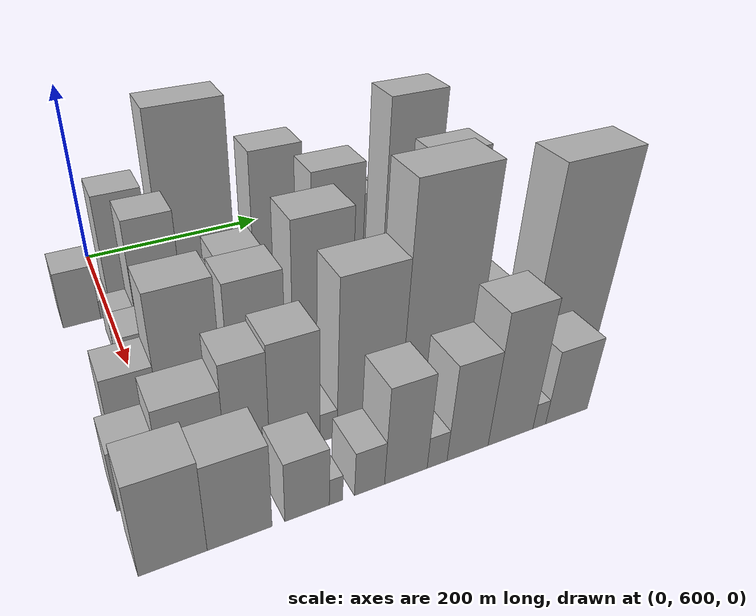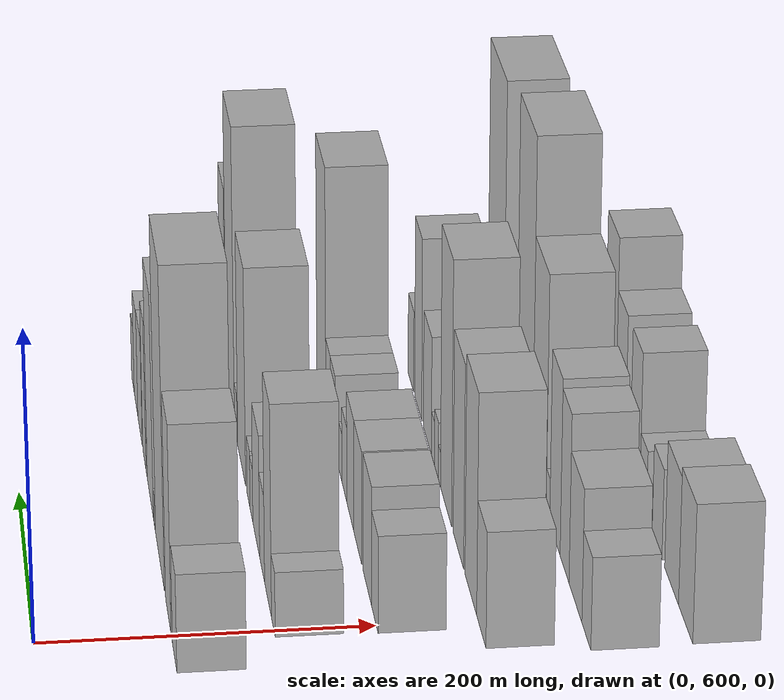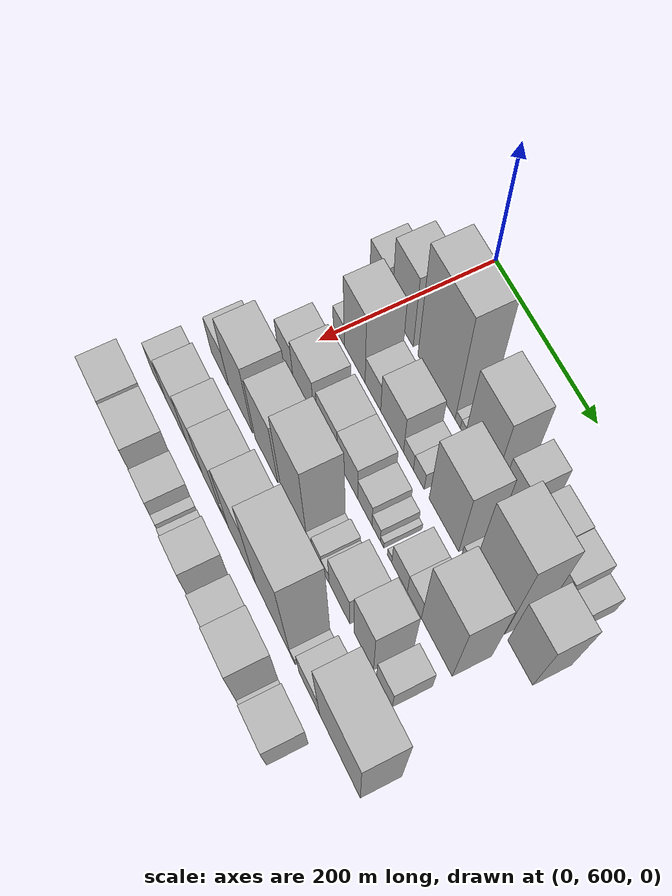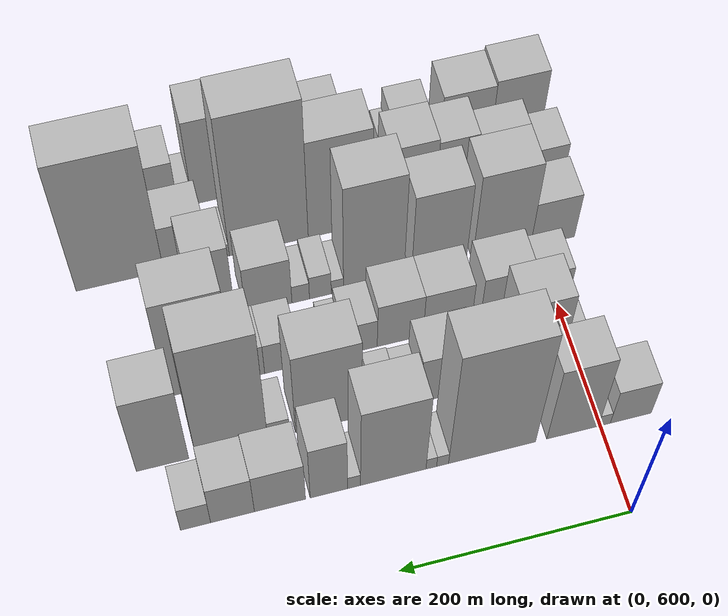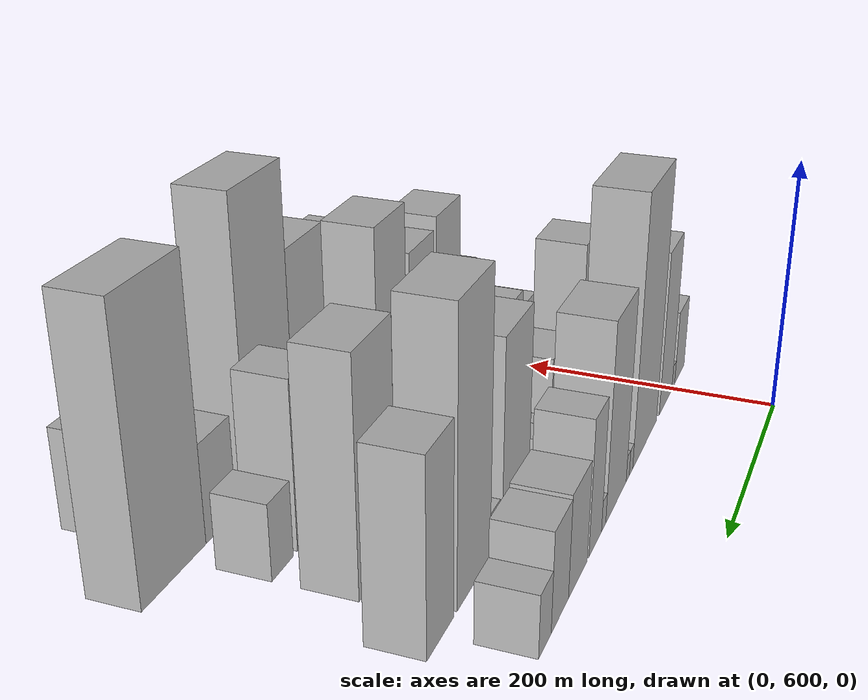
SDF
<sdf version="1.6">
 <world name="default">
  <model name="building_40">
   <static>1</static>
   <pose>100.0000 572.9199 0 0.000000 0.000000 0.000000</pose>
   <link name="link">
    <pose>0 0 31.50 0 0 0</pose>
    <collision name="collision"><geometry><box><size>40.0000 36.7376 63.0000</size></box></geometry></collision>
    <visual name="visual">
     <cast_shadows>0</cast_shadows>
     <geometry><box><size>40.0000 36.7376 63.0000</size></box></geometry>
     <material>
      <script>
       <uri>model://HANNAS_wall/materials/scripts</uri>
       <uri>model://HANNAS_wall/materials/textures</uri>
       <name>vrc/HANNAS_wall</name>
      </script>
     </material>
    </visual>
   </link>
  </model>
  <model name="building_41">
   <static>1</static>
   <pose>100.0000 596.5250 0 0.000000 0.000000 0.000000</pose>
   <link name="link">
    <pose>0 0 10.50 0 0 0</pose>
    <collision name="collision"><geometry><box><size>40.0000 10.4726 21.0000</size></box></geometry></collision>
    <visual name="visual">
     <cast_shadows>0</cast_shadows>
     <geometry><box><size>40.0000 10.4726 21.0000</size></box></geometry>
     <material>
      <script>
       <uri>model://HANNAS_wall/materials/scripts</uri>
       <uri>model://HANNAS_wall/materials/textures</uri>
       <name>vrc/HANNAS_wall</name>
      </script>
     </material>
    </visual>
   </link>
  </model>
  <model name="building_42">
   <static>1</static>
   <pose>100.0000 624.8294 0 0.000000 0.000000 0.000000</pose>
   <link name="link">
    <pose>0 0 67.50 0 0 0</pose>
    <collision name="collision"><geometry><box><size>40.0000 46.1362 135.0000</size></box></geometry></collision>
    <visual name="visual">
     <cast_shadows>0</cast_shadows>
     <geometry><box><size>40.0000 46.1362 135.0000</size></box></geometry>
     <material>
      <script>
       <uri>model://HANNAS_wall/materials/scripts</uri>
       <uri>model://HANNAS_wall/materials/textures</uri>
       <name>vrc/HANNAS_wall</name>
      </script>
     </material>
    </visual>
   </link>
  </model>
  <model name="building_43">
   <static>1</static>
   <pose>100.0000 696.2283 0 0.000000 0.000000 0.000000</pose>
   <link name="link">
    <pose>0 0 105.00 0 0 0</pose>
    <collision name="collision"><geometry><box><size>40.0000 76.6616 210.0000</size></box></geometry></collision>
    <visual name="visual">
     <cast_shadows>0</cast_shadows>
     <geometry><box><size>40.0000 76.6616 210.0000</size></box></geometry>
     <material>
      <script>
       <uri>model://HANNAS_wall/materials/scripts</uri>
       <uri>model://HANNAS_wall/materials/textures</uri>
       <name>vrc/HANNAS_wall</name>
      </script>
     </material>
    </visual>
   </link>
  </model>
  <model name="building_44">
   <static>1</static>
   <pose>100.0000 739.7841 0 0.000000 0.000000 0.000000</pose>
   <link name="link">
    <pose>0 0 10.50 0 0 0</pose>
    <collision name="collision"><geometry><box><size>40.0000 10.4501 21.0000</size></box></geometry></collision>
    <visual name="visual">
     <cast_shadows>0</cast_shadows>
     <geometry><box><size>40.0000 10.4501 21.0000</size></box></geometry>
     <material>
      <script>
       <uri>model://HANNAS_wall/materials/scripts</uri>
       <uri>model://HANNAS_wall/materials/textures</uri>
       <name>vrc/HANNAS_wall</name>
      </script>
     </material>
    </visual>
   </link>
  </model>
  <model name="building_45">
   <static>1</static>
   <pose>100.0000 749.6414 0 0.000000 0.000000 0.000000</pose>
   <link name="link">
    <pose>0 0 10.50 0 0 0</pose>
    <collision name="collision"><geometry><box><size>40.0000 9.2644 21.0000</size></box></geometry></collision>
    <visual name="visual">
     <cast_shadows>0</cast_shadows>
     <geometry><box><size>40.0000 9.2644 21.0000</size></box></geometry>
     <material>
      <script>
       <uri>model://HANNAS_wall/materials/scripts</uri>
       <uri>model://HANNAS_wall/materials/textures</uri>
       <name>vrc/HANNAS_wall</name>
      </script>
     </material>
    </visual>
   </link>
  </model>
  <model name="building_46">
   <static>1</static>
   <pose>100.0000 782.7369 0 0.000000 0.000000 0.000000</pose>
   <link name="link">
    <pose>0 0 75.00 0 0 0</pose>
    <collision name="collision"><geometry><box><size>40.0000 56.9267 150.0000</size></box></geometry></collision>
    <visual name="visual">
     <cast_shadows>0</cast_shadows>
     <geometry><box><size>40.0000 56.9267 150.0000</size></box></geometry>
     <material>
      <script>
       <uri>model://HANNAS_wall/materials/scripts</uri>
       <uri>model://HANNAS_wall/materials/textures</uri>
       <name>vrc/HANNAS_wall</name>
      </script>
     </material>
    </visual>
   </link>
  </model>
  <model name="building_47">
   <static>1</static>
   <pose>100.0000 816.8088 0 0.000000 0.000000 0.000000</pose>
   <link name="link">
    <pose>0 0 12.00 0 0 0</pose>
    <collision name="collision"><geometry><box><size>40.0000 11.2171 24.0000</size></box></geometry></collision>
    <visual name="visual">
     <cast_shadows>0</cast_shadows>
     <geometry><box><size>40.0000 11.2171 24.0000</size></box></geometry>
     <material>
      <script>
       <uri>model://HANNAS_wall/materials/scripts</uri>
       <uri>model://HANNAS_wall/materials/textures</uri>
       <name>vrc/HANNAS_wall</name>
      </script>
     </material>
    </visual>
   </link>
  </model>
  <model name="building_48">
   <static>1</static>
   <pose>100.0000 838.4634 0 0.000000 0.000000 0.000000</pose>
   <link name="link">
    <pose>0 0 51.00 0 0 0</pose>
    <collision name="collision"><geometry><box><size>40.0000 32.0920 102.0000</size></box></geometry></collision>
    <visual name="visual">
     <cast_shadows>0</cast_shadows>
     <geometry><box><size>40.0000 32.0920 102.0000</size></box></geometry>
     <material>
      <script>
       <uri>model://HANNAS_wall/materials/scripts</uri>
       <uri>model://HANNAS_wall/materials/textures</uri>
       <name>vrc/HANNAS_wall</name>
      </script>
     </material>
    </visual>
   </link>
  </model>
  <model name="building_49">
   <static>1</static>
   <pose>100.0000 880.3595 0 0.000000 0.000000 0.000000</pose>
   <link name="link">
    <pose>0 0 37.50 0 0 0</pose>
    <collision name="collision"><geometry><box><size>40.0000 43.7001 75.0000</size></box></geometry></collision>
    <visual name="visual">
     <cast_shadows>0</cast_shadows>
     <geometry><box><size>40.0000 43.7001 75.0000</size></box></geometry>
     <material>
      <script>
       <uri>model://HANNAS_wall/materials/scripts</uri>
       <uri>model://HANNAS_wall/materials/textures</uri>
       <name>vrc/HANNAS_wall</name>
      </script>
     </material>
    </visual>
   </link>
  </model>
  <model name="building_50">
   <static>1</static>
   <pose>100.0000 920.8104 0 0.000000 0.000000 0.000000</pose>
   <link name="link">
    <pose>0 0 36.00 0 0 0</pose>
    <collision name="collision"><geometry><box><size>40.0000 37.2017 72.0000</size></box></geometry></collision>
    <visual name="visual">
     <cast_shadows>0</cast_shadows>
     <geometry><box><size>40.0000 37.2017 72.0000</size></box></geometry>
     <material>
      <script>
       <uri>model://HANNAS_wall/materials/scripts</uri>
       <uri>model://HANNAS_wall/materials/textures</uri>
       <name>vrc/HANNAS_wall</name>
      </script>
     </material>
    </visual>
   </link>
  </model>
  <model name="building_51">
   <static>1</static>
   <pose>100.0000 952.1875 0 0.000000 0.000000 0.000000</pose>
   <link name="link">
    <pose>0 0 22.50 0 0 0</pose>
    <collision name="collision"><geometry><box><size>40.0000 25.5526 45.0000</size></box></geometry></collision>
    <visual name="visual">
     <cast_shadows>0</cast_shadows>
     <geometry><box><size>40.0000 25.5526 45.0000</size></box></geometry>
     <material>
      <script>
       <uri>model://HANNAS_wall/materials/scripts</uri>
       <uri>model://HANNAS_wall/materials/textures</uri>
       <name>vrc/HANNAS_wall</name>
      </script>
     </material>
    </visual>
   </link>
  </model>
  <model name="building_97">
   <static>1</static>
   <pose>160.0000 604.2125 0 0.000000 0.000000 0.000000</pose>
   <link name="link">
    <pose>0 0 21.00 0 0 0</pose>
    <collision name="collision"><geometry><box><size>40.0000 24.4616 42.0000</size></box></geometry></collision>
    <visual name="visual">
     <cast_shadows>0</cast_shadows>
     <geometry><box><size>40.0000 24.4616 42.0000</size></box></geometry>
     <material>
      <script>
       <uri>model://HANNAS_wall/materials/scripts</uri>
       <uri>model://HANNAS_wall/materials/textures</uri>
       <name>vrc/HANNAS_wall</name>
      </script>
     </material>
    </visual>
   </link>
  </model>
  <model name="building_98">
   <static>1</static>
   <pose>160.0000 639.0380 0 0.000000 0.000000 0.000000</pose>
   <link name="link">
    <pose>0 0 69.00 0 0 0</pose>
    <collision name="collision"><geometry><box><size>40.0000 45.1893 138.0000</size></box></geometry></collision>
    <visual name="visual">
     <cast_shadows>0</cast_shadows>
     <geometry><box><size>40.0000 45.1893 138.0000</size></box></geometry>
     <material>
      <script>
       <uri>model://HANNAS_wall/materials/scripts</uri>
       <uri>model://HANNAS_wall/materials/textures</uri>
       <name>vrc/HANNAS_wall</name>
      </script>
     </material>
    </visual>
   </link>
  </model>
  <model name="building_99">
   <static>1</static>
   <pose>160.0000 678.2234 0 0.000000 0.000000 0.000000</pose>
   <link name="link">
    <pose>0 0 28.50 0 0 0</pose>
    <collision name="collision"><geometry><box><size>40.0000 33.1814 57.0000</size></box></geometry></collision>
    <visual name="visual">
     <cast_shadows>0</cast_shadows>
     <geometry><box><size>40.0000 33.1814 57.0000</size></box></geometry>
     <material>
      <script>
       <uri>model://HANNAS_wall/materials/scripts</uri>
       <uri>model://HANNAS_wall/materials/textures</uri>
       <name>vrc/HANNAS_wall</name>
      </script>
     </material>
    </visual>
   </link>
  </model>
  <model name="building_100">
   <static>1</static>
   <pose>160.0000 718.5793 0 0.000000 0.000000 0.000000</pose>
   <link name="link">
    <pose>0 0 40.50 0 0 0</pose>
    <collision name="collision"><geometry><box><size>40.0000 47.5305 81.0000</size></box></geometry></collision>
    <visual name="visual">
     <cast_shadows>0</cast_shadows>
     <geometry><box><size>40.0000 47.5305 81.0000</size></box></geometry>
     <material>
      <script>
       <uri>model://HANNAS_wall/materials/scripts</uri>
       <uri>model://HANNAS_wall/materials/textures</uri>
       <name>vrc/HANNAS_wall</name>
      </script>
     </material>
    </visual>
   </link>
  </model>
  <model name="building_101">
   <static>1</static>
   <pose>160.0000 752.3772 0 0.000000 0.000000 0.000000</pose>
   <link name="link">
    <pose>0 0 18.00 0 0 0</pose>
    <collision name="collision"><geometry><box><size>40.0000 20.0651 36.0000</size></box></geometry></collision>
    <visual name="visual">
     <cast_shadows>0</cast_shadows>
     <geometry><box><size>40.0000 20.0651 36.0000</size></box></geometry>
     <material>
      <script>
       <uri>model://HANNAS_wall/materials/scripts</uri>
       <uri>model://HANNAS_wall/materials/textures</uri>
       <name>vrc/HANNAS_wall</name>
      </script>
     </material>
    </visual>
   </link>
  </model>
  <model name="building_102">
   <static>1</static>
   <pose>160.0000 773.3027 0 0.000000 0.000000 0.000000</pose>
   <link name="link">
    <pose>0 0 19.50 0 0 0</pose>
    <collision name="collision"><geometry><box><size>40.0000 21.7859 39.0000</size></box></geometry></collision>
    <visual name="visual">
     <cast_shadows>0</cast_shadows>
     <geometry><box><size>40.0000 21.7859 39.0000</size></box></geometry>
     <material>
      <script>
       <uri>model://HANNAS_wall/materials/scripts</uri>
       <uri>model://HANNAS_wall/materials/textures</uri>
       <name>vrc/HANNAS_wall</name>
      </script>
     </material>
    </visual>
   </link>
  </model>
  <model name="building_103">
   <static>1</static>
   <pose>160.0000 823.2101 0 0.000000 0.000000 0.000000</pose>
   <link name="link">
    <pose>0 0 73.50 0 0 0</pose>
    <collision name="collision"><geometry><box><size>40.0000 58.0291 147.0000</size></box></geometry></collision>
    <visual name="visual">
     <cast_shadows>0</cast_shadows>
     <geometry><box><size>40.0000 58.0291 147.0000</size></box></geometry>
     <material>
      <script>
       <uri>model://HANNAS_wall/materials/scripts</uri>
       <uri>model://HANNAS_wall/materials/textures</uri>
       <name>vrc/HANNAS_wall</name>
      </script>
     </material>
    </visual>
   </link>
  </model>
  <model name="building_104">
   <static>1</static>
   <pose>160.0000 866.8562 0 0.000000 0.000000 0.000000</pose>
   <link name="link">
    <pose>0 0 16.50 0 0 0</pose>
    <collision name="collision"><geometry><box><size>40.0000 19.2632 33.0000</size></box></geometry></collision>
    <visual name="visual">
     <cast_shadows>0</cast_shadows>
     <geometry><box><size>40.0000 19.2632 33.0000</size></box></geometry>
     <material>
      <script>
       <uri>model://HANNAS_wall/materials/scripts</uri>
       <uri>model://HANNAS_wall/materials/textures</uri>
       <name>vrc/HANNAS_wall</name>
      </script>
     </material>
    </visual>
   </link>
  </model>
  <model name="building_105">
   <static>1</static>
   <pose>160.0000 907.6224 0 0.000000 0.000000 0.000000</pose>
   <link name="link">
    <pose>0 0 103.50 0 0 0</pose>
    <collision name="collision"><geometry><box><size>40.0000 62.2692 207.0000</size></box></geometry></collision>
    <visual name="visual">
     <cast_shadows>0</cast_shadows>
     <geometry><box><size>40.0000 62.2692 207.0000</size></box></geometry>
     <material>
      <script>
       <uri>model://HANNAS_wall/materials/scripts</uri>
       <uri>model://HANNAS_wall/materials/textures</uri>
       <name>vrc/HANNAS_wall</name>
      </script>
     </material>
    </visual>
   </link>
  </model>
  <model name="building_106">
   <static>1</static>
   <pose>160.0000 967.2731 0 0.000000 0.000000 0.000000</pose>
   <link name="link">
    <pose>0 0 69.00 0 0 0</pose>
    <collision name="collision"><geometry><box><size>40.0000 45.0322 138.0000</size></box></geometry></collision>
    <visual name="visual">
     <cast_shadows>0</cast_shadows>
     <geometry><box><size>40.0000 45.0322 138.0000</size></box></geometry>
     <material>
      <script>
       <uri>model://HANNAS_wall/materials/scripts</uri>
       <uri>model://HANNAS_wall/materials/textures</uri>
       <name>vrc/HANNAS_wall</name>
      </script>
     </material>
    </visual>
   </link>
  </model>
  <model name="building_153">
   <static>1</static>
   <pose>220.0000 607.2901 0 0.000000 0.000000 0.000000</pose>
   <link name="link">
    <pose>0 0 31.50 0 0 0</pose>
    <collision name="collision"><geometry><box><size>40.0000 34.1573 63.0000</size></box></geometry></collision>
    <visual name="visual">
     <cast_shadows>0</cast_shadows>
     <geometry><box><size>40.0000 34.1573 63.0000</size></box></geometry>
     <material>
      <script>
       <uri>model://HANNAS_wall/materials/scripts</uri>
       <uri>model://HANNAS_wall/materials/textures</uri>
       <name>vrc/HANNAS_wall</name>
      </script>
     </material>
    </visual>
   </link>
  </model>
  <model name="building_154">
   <static>1</static>
   <pose>220.0000 647.7543 0 0.000000 0.000000 0.000000</pose>
   <link name="link">
    <pose>0 0 39.00 0 0 0</pose>
    <collision name="collision"><geometry><box><size>40.0000 46.7710 78.0000</size></box></geometry></collision>
    <visual name="visual">
     <cast_shadows>0</cast_shadows>
     <geometry><box><size>40.0000 46.7710 78.0000</size></box></geometry>
     <material>
      <script>
       <uri>model://HANNAS_wall/materials/scripts</uri>
       <uri>model://HANNAS_wall/materials/textures</uri>
       <name>vrc/HANNAS_wall</name>
      </script>
     </material>
    </visual>
   </link>
  </model>
  <model name="building_155">
   <static>1</static>
   <pose>220.0000 700.9331 0 0.000000 0.000000 0.000000</pose>
   <link name="link">
    <pose>0 0 37.50 0 0 0</pose>
    <collision name="collision"><geometry><box><size>40.0000 43.5866 75.0000</size></box></geometry></collision>
    <visual name="visual">
     <cast_shadows>0</cast_shadows>
     <geometry><box><size>40.0000 43.5866 75.0000</size></box></geometry>
     <material>
      <script>
       <uri>model://HANNAS_wall/materials/scripts</uri>
       <uri>model://HANNAS_wall/materials/textures</uri>
       <name>vrc/HANNAS_wall</name>
      </script>
     </material>
    </visual>
   </link>
  </model>
  <model name="building_156">
   <static>1</static>
   <pose>220.0000 743.4895 0 0.000000 0.000000 0.000000</pose>
   <link name="link">
    <pose>0 0 37.50 0 0 0</pose>
    <collision name="collision"><geometry><box><size>40.0000 41.5262 75.0000</size></box></geometry></collision>
    <visual name="visual">
     <cast_shadows>0</cast_shadows>
     <geometry><box><size>40.0000 41.5262 75.0000</size></box></geometry>
     <material>
      <script>
       <uri>model://HANNAS_wall/materials/scripts</uri>
       <uri>model://HANNAS_wall/materials/textures</uri>
       <name>vrc/HANNAS_wall</name>
      </script>
     </material>
    </visual>
   </link>
  </model>
  <model name="building_157">
   <static>1</static>
   <pose>220.0000 779.0236 0 0.000000 0.000000 0.000000</pose>
   <link name="link">
    <pose>0 0 25.50 0 0 0</pose>
    <collision name="collision"><geometry><box><size>40.0000 29.5420 51.0000</size></box></geometry></collision>
    <visual name="visual">
     <cast_shadows>0</cast_shadows>
     <geometry><box><size>40.0000 29.5420 51.0000</size></box></geometry>
     <material>
      <script>
       <uri>model://HANNAS_wall/materials/scripts</uri>
       <uri>model://HANNAS_wall/materials/textures</uri>
       <name>vrc/HANNAS_wall</name>
      </script>
     </material>
    </visual>
   </link>
  </model>
  <model name="building_158">
   <static>1</static>
   <pose>220.0000 802.3124 0 0.000000 0.000000 0.000000</pose>
   <link name="link">
    <pose>0 0 16.50 0 0 0</pose>
    <collision name="collision"><geometry><box><size>40.0000 17.0357 33.0000</size></box></geometry></collision>
    <visual name="visual">
     <cast_shadows>0</cast_shadows>
     <geometry><box><size>40.0000 17.0357 33.0000</size></box></geometry>
     <material>
      <script>
       <uri>model://HANNAS_wall/materials/scripts</uri>
       <uri>model://HANNAS_wall/materials/textures</uri>
       <name>vrc/HANNAS_wall</name>
      </script>
     </material>
    </visual>
   </link>
  </model>
  <model name="building_159">
   <static>1</static>
   <pose>220.0000 814.4273 0 0.000000 0.000000 0.000000</pose>
   <link name="link">
    <pose>0 0 7.50 0 0 0</pose>
    <collision name="collision"><geometry><box><size>40.0000 7.1941 15.0000</size></box></geometry></collision>
    <visual name="visual">
     <cast_shadows>0</cast_shadows>
     <geometry><box><size>40.0000 7.1941 15.0000</size></box></geometry>
     <material>
      <script>
       <uri>model://HANNAS_wall/materials/scripts</uri>
       <uri>model://HANNAS_wall/materials/textures</uri>
       <name>vrc/HANNAS_wall</name>
      </script>
     </material>
    </visual>
   </link>
  </model>
  <model name="building_160">
   <static>1</static>
   <pose>220.0000 829.4575 0 0.000000 0.000000 0.000000</pose>
   <link name="link">
    <pose>0 0 9.00 0 0 0</pose>
    <collision name="collision"><geometry><box><size>40.0000 8.8664 18.0000</size></box></geometry></collision>
    <visual name="visual">
     <cast_shadows>0</cast_shadows>
     <geometry><box><size>40.0000 8.8664 18.0000</size></box></geometry>
     <material>
      <script>
       <uri>model://HANNAS_wall/materials/scripts</uri>
       <uri>model://HANNAS_wall/materials/textures</uri>
       <name>vrc/HANNAS_wall</name>
      </script>
     </material>
    </visual>
   </link>
  </model>
  <model name="building_161">
   <static>1</static>
   <pose>220.0000 849.2988 0 0.000000 0.000000 0.000000</pose>
   <link name="link">
    <pose>0 0 27.00 0 0 0</pose>
    <collision name="collision"><geometry><box><size>40.0000 30.8163 54.0000</size></box></geometry></collision>
    <visual name="visual">
     <cast_shadows>0</cast_shadows>
     <geometry><box><size>40.0000 30.8163 54.0000</size></box></geometry>
     <material>
      <script>
       <uri>model://HANNAS_wall/materials/scripts</uri>
       <uri>model://HANNAS_wall/materials/textures</uri>
       <name>vrc/HANNAS_wall</name>
      </script>
     </material>
    </visual>
   </link>
  </model>
  <model name="building_162">
   <static>1</static>
   <pose>220.0000 878.3520 0 0.000000 0.000000 0.000000</pose>
   <link name="link">
    <pose>0 0 27.00 0 0 0</pose>
    <collision name="collision"><geometry><box><size>40.0000 27.2900 54.0000</size></box></geometry></collision>
    <visual name="visual">
     <cast_shadows>0</cast_shadows>
     <geometry><box><size>40.0000 27.2900 54.0000</size></box></geometry>
     <material>
      <script>
       <uri>model://HANNAS_wall/materials/scripts</uri>
       <uri>model://HANNAS_wall/materials/textures</uri>
       <name>vrc/HANNAS_wall</name>
      </script>
     </material>
    </visual>
   </link>
  </model>
  <model name="building_163">
   <static>1</static>
   <pose>220.0000 921.3708 0 0.000000 0.000000 0.000000</pose>
   <link name="link">
    <pose>0 0 85.50 0 0 0</pose>
    <collision name="collision"><geometry><box><size>40.0000 58.7475 171.0000</size></box></geometry></collision>
    <visual name="visual">
     <cast_shadows>0</cast_shadows>
     <geometry><box><size>40.0000 58.7475 171.0000</size></box></geometry>
     <material>
      <script>
       <uri>model://HANNAS_wall/materials/scripts</uri>
       <uri>model://HANNAS_wall/materials/textures</uri>
       <name>vrc/HANNAS_wall</name>
      </script>
     </material>
    </visual>
   </link>
  </model>
  <model name="building_205">
   <static>1</static>
   <pose>280.0000 585.2950 0 0.000000 0.000000 0.000000</pose>
   <link name="link">
    <pose>0 0 37.50 0 0 0</pose>
    <collision name="collision"><geometry><box><size>40.0000 41.3875 75.0000</size></box></geometry></collision>
    <visual name="visual">
     <cast_shadows>0</cast_shadows>
     <geometry><box><size>40.0000 41.3875 75.0000</size></box></geometry>
     <material>
      <script>
       <uri>model://HANNAS_wall/materials/scripts</uri>
       <uri>model://HANNAS_wall/materials/textures</uri>
       <name>vrc/HANNAS_wall</name>
      </script>
     </material>
    </visual>
   </link>
  </model>
  <model name="building_206">
   <static>1</static>
   <pose>280.0000 632.9759 0 0.000000 0.000000 0.000000</pose>
   <link name="link">
    <pose>0 0 72.00 0 0 0</pose>
    <collision name="collision"><geometry><box><size>40.0000 53.9742 144.0000</size></box></geometry></collision>
    <visual name="visual">
     <cast_shadows>0</cast_shadows>
     <geometry><box><size>40.0000 53.9742 144.0000</size></box></geometry>
     <material>
      <script>
       <uri>model://HANNAS_wall/materials/scripts</uri>
       <uri>model://HANNAS_wall/materials/textures</uri>
       <name>vrc/HANNAS_wall</name>
      </script>
     </material>
    </visual>
   </link>
  </model>
  <model name="building_207">
   <static>1</static>
   <pose>280.0000 691.1954 0 0.000000 0.000000 0.000000</pose>
   <link name="link">
    <pose>0 0 67.50 0 0 0</pose>
    <collision name="collision"><geometry><box><size>40.0000 50.4648 135.0000</size></box></geometry></collision>
    <visual name="visual">
     <cast_shadows>0</cast_shadows>
     <geometry><box><size>40.0000 50.4648 135.0000</size></box></geometry>
     <material>
      <script>
       <uri>model://HANNAS_wall/materials/scripts</uri>
       <uri>model://HANNAS_wall/materials/textures</uri>
       <name>vrc/HANNAS_wall</name>
      </script>
     </material>
    </visual>
   </link>
  </model>
  <model name="building_208">
   <static>1</static>
   <pose>280.0000 751.0943 0 0.000000 0.000000 0.000000</pose>
   <link name="link">
    <pose>0 0 88.50 0 0 0</pose>
    <collision name="collision"><geometry><box><size>40.0000 55.3329 177.0000</size></box></geometry></collision>
    <visual name="visual">
     <cast_shadows>0</cast_shadows>
     <geometry><box><size>40.0000 55.3329 177.0000</size></box></geometry>
     <material>
      <script>
       <uri>model://HANNAS_wall/materials/scripts</uri>
       <uri>model://HANNAS_wall/materials/textures</uri>
       <name>vrc/HANNAS_wall</name>
      </script>
     </material>
    </visual>
   </link>
  </model>
  <model name="building_209">
   <static>1</static>
   <pose>280.0000 784.3705 0 0.000000 0.000000 0.000000</pose>
   <link name="link">
    <pose>0 0 12.00 0 0 0</pose>
    <collision name="collision"><geometry><box><size>40.0000 11.2194 24.0000</size></box></geometry></collision>
    <visual name="visual">
     <cast_shadows>0</cast_shadows>
     <geometry><box><size>40.0000 11.2194 24.0000</size></box></geometry>
     <material>
      <script>
       <uri>model://HANNAS_wall/materials/scripts</uri>
       <uri>model://HANNAS_wall/materials/textures</uri>
       <name>vrc/HANNAS_wall</name>
      </script>
     </material>
    </visual>
   </link>
  </model>
  <model name="building_210">
   <static>1</static>
   <pose>280.0000 799.8683 0 0.000000 0.000000 0.000000</pose>
   <link name="link">
    <pose>0 0 19.50 0 0 0</pose>
    <collision name="collision"><geometry><box><size>40.0000 19.7761 39.0000</size></box></geometry></collision>
    <visual name="visual">
     <cast_shadows>0</cast_shadows>
     <geometry><box><size>40.0000 19.7761 39.0000</size></box></geometry>
     <material>
      <script>
       <uri>model://HANNAS_wall/materials/scripts</uri>
       <uri>model://HANNAS_wall/materials/textures</uri>
       <name>vrc/HANNAS_wall</name>
      </script>
     </material>
    </visual>
   </link>
  </model>
  <model name="building_211">
   <static>1</static>
   <pose>280.0000 817.6926 0 0.000000 0.000000 0.000000</pose>
   <link name="link">
    <pose>0 0 15.00 0 0 0</pose>
    <collision name="collision"><geometry><box><size>40.0000 15.8726 30.0000</size></box></geometry></collision>
    <visual name="visual">
     <cast_shadows>0</cast_shadows>
     <geometry><box><size>40.0000 15.8726 30.0000</size></box></geometry>
     <material>
      <script>
       <uri>model://HANNAS_wall/materials/scripts</uri>
       <uri>model://HANNAS_wall/materials/textures</uri>
       <name>vrc/HANNAS_wall</name>
      </script>
     </material>
    </visual>
   </link>
  </model>
  <model name="building_212">
   <static>1</static>
   <pose>280.0000 846.5533 0 0.000000 0.000000 0.000000</pose>
   <link name="link">
    <pose>0 0 40.50 0 0 0</pose>
    <collision name="collision"><geometry><box><size>40.0000 41.8489 81.0000</size></box></geometry></collision>
    <visual name="visual">
     <cast_shadows>0</cast_shadows>
     <geometry><box><size>40.0000 41.8489 81.0000</size></box></geometry>
     <material>
      <script>
       <uri>model://HANNAS_wall/materials/scripts</uri>
       <uri>model://HANNAS_wall/materials/textures</uri>
       <name>vrc/HANNAS_wall</name>
      </script>
     </material>
    </visual>
   </link>
  </model>
  <model name="building_213">
   <static>1</static>
   <pose>280.0000 895.4315 0 0.000000 0.000000 0.000000</pose>
   <link name="link">
    <pose>0 0 63.00 0 0 0</pose>
    <collision name="collision"><geometry><box><size>40.0000 37.9076 126.0000</size></box></geometry></collision>
    <visual name="visual">
     <cast_shadows>0</cast_shadows>
     <geometry><box><size>40.0000 37.9076 126.0000</size></box></geometry>
     <material>
      <script>
       <uri>model://HANNAS_wall/materials/scripts</uri>
       <uri>model://HANNAS_wall/materials/textures</uri>
       <name>vrc/HANNAS_wall</name>
      </script>
     </material>
    </visual>
   </link>
  </model>
  <model name="building_214">
   <static>1</static>
   <pose>280.0000 935.5826 0 0.000000 0.000000 0.000000</pose>
   <link name="link">
    <pose>0 0 28.50 0 0 0</pose>
    <collision name="collision"><geometry><box><size>40.0000 30.3947 57.0000</size></box></geometry></collision>
    <visual name="visual">
     <cast_shadows>0</cast_shadows>
     <geometry><box><size>40.0000 30.3947 57.0000</size></box></geometry>
     <material>
      <script>
       <uri>model://HANNAS_wall/materials/scripts</uri>
       <uri>model://HANNAS_wall/materials/textures</uri>
       <name>vrc/HANNAS_wall</name>
      </script>
     </material>
    </visual>
   </link>
  </model>
  <model name="building_253">
   <static>1</static>
   <pose>340.0000 572.7807 0 0.000000 0.000000 0.000000</pose>
   <link name="link">
    <pose>0 0 30.00 0 0 0</pose>
    <collision name="collision"><geometry><box><size>40.0000 34.5948 60.0000</size></box></geometry></collision>
    <visual name="visual">
     <cast_shadows>0</cast_shadows>
     <geometry><box><size>40.0000 34.5948 60.0000</size></box></geometry>
     <material>
      <script>
       <uri>model://HANNAS_wall/materials/scripts</uri>
       <uri>model://HANNAS_wall/materials/textures</uri>
       <name>vrc/HANNAS_wall</name>
      </script>
     </material>
    </visual>
   </link>
  </model>
  <model name="building_254">
   <static>1</static>
   <pose>340.0000 615.6362 0 0.000000 0.000000 0.000000</pose>
   <link name="link">
    <pose>0 0 43.50 0 0 0</pose>
    <collision name="collision"><geometry><box><size>40.0000 51.1161 87.0000</size></box></geometry></collision>
    <visual name="visual">
     <cast_shadows>0</cast_shadows>
     <geometry><box><size>40.0000 51.1161 87.0000</size></box></geometry>
     <material>
      <script>
       <uri>model://HANNAS_wall/materials/scripts</uri>
       <uri>model://HANNAS_wall/materials/textures</uri>
       <name>vrc/HANNAS_wall</name>
      </script>
     </material>
    </visual>
   </link>
  </model>
  <model name="building_255">
   <static>1</static>
   <pose>340.0000 659.3716 0 0.000000 0.000000 0.000000</pose>
   <link name="link">
    <pose>0 0 55.50 0 0 0</pose>
    <collision name="collision"><geometry><box><size>40.0000 36.3547 111.0000</size></box></geometry></collision>
    <visual name="visual">
     <cast_shadows>0</cast_shadows>
     <geometry><box><size>40.0000 36.3547 111.0000</size></box></geometry>
     <material>
      <script>
       <uri>model://HANNAS_wall/materials/scripts</uri>
       <uri>model://HANNAS_wall/materials/textures</uri>
       <name>vrc/HANNAS_wall</name>
      </script>
     </material>
    </visual>
   </link>
  </model>
  <model name="building_256">
   <static>1</static>
   <pose>340.0000 699.2609 0 0.000000 0.000000 0.000000</pose>
   <link name="link">
    <pose>0 0 58.50 0 0 0</pose>
    <collision name="collision"><geometry><box><size>40.0000 43.4240 117.0000</size></box></geometry></collision>
    <visual name="visual">
     <cast_shadows>0</cast_shadows>
     <geometry><box><size>40.0000 43.4240 117.0000</size></box></geometry>
     <material>
      <script>
       <uri>model://HANNAS_wall/materials/scripts</uri>
       <uri>model://HANNAS_wall/materials/textures</uri>
       <name>vrc/HANNAS_wall</name>
      </script>
     </material>
    </visual>
   </link>
  </model>
  <model name="building_257">
   <static>1</static>
   <pose>340.0000 728.7564 0 0.000000 0.000000 0.000000</pose>
   <link name="link">
    <pose>0 0 15.00 0 0 0</pose>
    <collision name="collision"><geometry><box><size>40.0000 15.5670 30.0000</size></box></geometry></collision>
    <visual name="visual">
     <cast_shadows>0</cast_shadows>
     <geometry><box><size>40.0000 15.5670 30.0000</size></box></geometry>
     <material>
      <script>
       <uri>model://HANNAS_wall/materials/scripts</uri>
       <uri>model://HANNAS_wall/materials/textures</uri>
       <name>vrc/HANNAS_wall</name>
      </script>
     </material>
    </visual>
   </link>
  </model>
  <model name="building_258">
   <static>1</static>
   <pose>340.0000 766.1573 0 0.000000 0.000000 0.000000</pose>
   <link name="link">
    <pose>0 0 79.50 0 0 0</pose>
    <collision name="collision"><geometry><box><size>40.0000 59.2348 159.0000</size></box></geometry></collision>
    <visual name="visual">
     <cast_shadows>0</cast_shadows>
     <geometry><box><size>40.0000 59.2348 159.0000</size></box></geometry>
     <material>
      <script>
       <uri>model://HANNAS_wall/materials/scripts</uri>
       <uri>model://HANNAS_wall/materials/textures</uri>
       <name>vrc/HANNAS_wall</name>
      </script>
     </material>
    </visual>
   </link>
  </model>
  <model name="building_259">
   <static>1</static>
   <pose>340.0000 832.0649 0 0.000000 0.000000 0.000000</pose>
   <link name="link">
    <pose>0 0 112.50 0 0 0</pose>
    <collision name="collision"><geometry><box><size>40.0000 72.5804 225.0000</size></box></geometry></collision>
    <visual name="visual">
     <cast_shadows>0</cast_shadows>
     <geometry><box><size>40.0000 72.5804 225.0000</size></box></geometry>
     <material>
      <script>
       <uri>model://HANNAS_wall/materials/scripts</uri>
       <uri>model://HANNAS_wall/materials/textures</uri>
       <name>vrc/HANNAS_wall</name>
      </script>
     </material>
    </visual>
   </link>
  </model>
  <model name="building_260">
   <static>1</static>
   <pose>340.0000 873.5688 0 0.000000 0.000000 0.000000</pose>
   <link name="link">
    <pose>0 0 10.50 0 0 0</pose>
    <collision name="collision"><geometry><box><size>40.0000 10.4273 21.0000</size></box></geometry></collision>
    <visual name="visual">
     <cast_shadows>0</cast_shadows>
     <geometry><box><size>40.0000 10.4273 21.0000</size></box></geometry>
     <material>
      <script>
       <uri>model://HANNAS_wall/materials/scripts</uri>
       <uri>model://HANNAS_wall/materials/textures</uri>
       <name>vrc/HANNAS_wall</name>
      </script>
     </material>
    </visual>
   </link>
  </model>
  <model name="building_261">
   <static>1</static>
   <pose>340.0000 907.4734 0 0.000000 0.000000 0.000000</pose>
   <link name="link">
    <pose>0 0 37.50 0 0 0</pose>
    <collision name="collision"><geometry><box><size>40.0000 41.3821 75.0000</size></box></geometry></collision>
    <visual name="visual">
     <cast_shadows>0</cast_shadows>
     <geometry><box><size>40.0000 41.3821 75.0000</size></box></geometry>
     <material>
      <script>
       <uri>model://HANNAS_wall/materials/scripts</uri>
       <uri>model://HANNAS_wall/materials/textures</uri>
       <name>vrc/HANNAS_wall</name>
      </script>
     </material>
    </visual>
   </link>
  </model>
  <model name="building_262">
   <static>1</static>
   <pose>340.0000 967.6594 0 0.000000 0.000000 0.000000</pose>
   <link name="link">
    <pose>0 0 105.00 0 0 0</pose>
    <collision name="collision"><geometry><box><size>40.0000 78.9900 210.0000</size></box></geometry></collision>
    <visual name="visual">
     <cast_shadows>0</cast_shadows>
     <geometry><box><size>40.0000 78.9900 210.0000</size></box></geometry>
     <material>
      <script>
       <uri>model://HANNAS_wall/materials/scripts</uri>
       <uri>model://HANNAS_wall/materials/textures</uri>
       <name>vrc/HANNAS_wall</name>
      </script>
     </material>
    </visual>
   </link>
  </model>
  <model name="building_308">
   <static>1</static>
   <pose>400.0000 581.5835 0 0.000000 0.000000 0.000000</pose>
   <link name="link">
    <pose>0 0 45.00 0 0 0</pose>
    <collision name="collision"><geometry><box><size>40.0000 49.1779 90.0000</size></box></geometry></collision>
    <visual name="visual">
     <cast_shadows>0</cast_shadows>
     <geometry><box><size>40.0000 49.1779 90.0000</size></box></geometry>
     <material>
      <script>
       <uri>model://HANNAS_wall/materials/scripts</uri>
       <uri>model://HANNAS_wall/materials/textures</uri>
       <name>vrc/HANNAS_wall</name>
      </script>
     </material>
    </visual>
   </link>
  </model>
  <model name="building_309">
   <static>1</static>
   <pose>400.0000 630.7257 0 0.000000 0.000000 0.000000</pose>
   <link name="link">
    <pose>0 0 42.00 0 0 0</pose>
    <collision name="collision"><geometry><box><size>40.0000 49.1067 84.0000</size></box></geometry></collision>
    <visual name="visual">
     <cast_shadows>0</cast_shadows>
     <geometry><box><size>40.0000 49.1067 84.0000</size></box></geometry>
     <material>
      <script>
       <uri>model://HANNAS_wall/materials/scripts</uri>
       <uri>model://HANNAS_wall/materials/textures</uri>
       <name>vrc/HANNAS_wall</name>
      </script>
     </material>
    </visual>
   </link>
  </model>
  <model name="building_310">
   <static>1</static>
   <pose>400.0000 683.2630 0 0.000000 0.000000 0.000000</pose>
   <link name="link">
    <pose>0 0 30.00 0 0 0</pose>
    <collision name="collision"><geometry><box><size>40.0000 35.9679 60.0000</size></box></geometry></collision>
    <visual name="visual">
     <cast_shadows>0</cast_shadows>
     <geometry><box><size>40.0000 35.9679 60.0000</size></box></geometry>
     <material>
      <script>
       <uri>model://HANNAS_wall/materials/scripts</uri>
       <uri>model://HANNAS_wall/materials/textures</uri>
       <name>vrc/HANNAS_wall</name>
      </script>
     </material>
    </visual>
   </link>
  </model>
  <model name="building_311">
   <static>1</static>
   <pose>400.0000 706.7880 0 0.000000 0.000000 0.000000</pose>
   <link name="link">
    <pose>0 0 13.50 0 0 0</pose>
    <collision name="collision"><geometry><box><size>40.0000 11.0820 27.0000</size></box></geometry></collision>
    <visual name="visual">
     <cast_shadows>0</cast_shadows>
     <geometry><box><size>40.0000 11.0820 27.0000</size></box></geometry>
     <material>
      <script>
       <uri>model://HANNAS_wall/materials/scripts</uri>
       <uri>model://HANNAS_wall/materials/textures</uri>
       <name>vrc/HANNAS_wall</name>
      </script>
     </material>
    </visual>
   </link>
  </model>
  <model name="building_312">
   <static>1</static>
   <pose>400.0000 735.2973 0 0.000000 0.000000 0.000000</pose>
   <link name="link">
    <pose>0 0 22.50 0 0 0</pose>
    <collision name="collision"><geometry><box><size>40.0000 25.9367 45.0000</size></box></geometry></collision>
    <visual name="visual">
     <cast_shadows>0</cast_shadows>
     <geometry><box><size>40.0000 25.9367 45.0000</size></box></geometry>
     <material>
      <script>
       <uri>model://HANNAS_wall/materials/scripts</uri>
       <uri>model://HANNAS_wall/materials/textures</uri>
       <name>vrc/HANNAS_wall</name>
      </script>
     </material>
    </visual>
   </link>
  </model>
  <model name="building_313">
   <static>1</static>
   <pose>400.0000 767.2788 0 0.000000 0.000000 0.000000</pose>
   <link name="link">
    <pose>0 0 49.50 0 0 0</pose>
    <collision name="collision"><geometry><box><size>40.0000 38.0262 99.0000</size></box></geometry></collision>
    <visual name="visual">
     <cast_shadows>0</cast_shadows>
     <geometry><box><size>40.0000 38.0262 99.0000</size></box></geometry>
     <material>
      <script>
       <uri>model://HANNAS_wall/materials/scripts</uri>
       <uri>model://HANNAS_wall/materials/textures</uri>
       <name>vrc/HANNAS_wall</name>
      </script>
     </material>
    </visual>
   </link>
  </model>
  <model name="building_314">
   <static>1</static>
   <pose>400.0000 795.4726 0 0.000000 0.000000 0.000000</pose>
   <link name="link">
    <pose>0 0 16.50 0 0 0</pose>
    <collision name="collision"><geometry><box><size>40.0000 18.3614 33.0000</size></box></geometry></collision>
    <visual name="visual">
     <cast_shadows>0</cast_shadows>
     <geometry><box><size>40.0000 18.3614 33.0000</size></box></geometry>
     <material>
      <script>
       <uri>model://HANNAS_wall/materials/scripts</uri>
       <uri>model://HANNAS_wall/materials/textures</uri>
       <name>vrc/HANNAS_wall</name>
      </script>
     </material>
    </visual>
   </link>
  </model>
  <model name="building_315">
   <static>1</static>
   <pose>400.0000 824.2879 0 0.000000 0.000000 0.000000</pose>
   <link name="link">
    <pose>0 0 49.50 0 0 0</pose>
    <collision name="collision"><geometry><box><size>40.0000 39.2691 99.0000</size></box></geometry></collision>
    <visual name="visual">
     <cast_shadows>0</cast_shadows>
     <geometry><box><size>40.0000 39.2691 99.0000</size></box></geometry>
     <material>
      <script>
       <uri>model://HANNAS_wall/materials/scripts</uri>
       <uri>model://HANNAS_wall/materials/textures</uri>
       <name>vrc/HANNAS_wall</name>
      </script>
     </material>
    </visual>
   </link>
  </model>
  <model name="building_316">
   <static>1</static>
   <pose>400.0000 866.3287 0 0.000000 0.000000 0.000000</pose>
   <link name="link">
    <pose>0 0 67.50 0 0 0</pose>
    <collision name="collision"><geometry><box><size>40.0000 44.8125 135.0000</size></box></geometry></collision>
    <visual name="visual">
     <cast_shadows>0</cast_shadows>
     <geometry><box><size>40.0000 44.8125 135.0000</size></box></geometry>
     <material>
      <script>
       <uri>model://HANNAS_wall/materials/scripts</uri>
       <uri>model://HANNAS_wall/materials/textures</uri>
       <name>vrc/HANNAS_wall</name>
      </script>
     </material>
    </visual>
   </link>
  </model>
  <model name="building_317">
   <static>1</static>
   <pose>400.0000 895.3587 0 0.000000 0.000000 0.000000</pose>
   <link name="link">
    <pose>0 0 13.50 0 0 0</pose>
    <collision name="collision"><geometry><box><size>40.0000 13.2474 27.0000</size></box></geometry></collision>
    <visual name="visual">
     <cast_shadows>0</cast_shadows>
     <geometry><box><size>40.0000 13.2474 27.0000</size></box></geometry>
     <material>
      <script>
       <uri>model://HANNAS_wall/materials/scripts</uri>
       <uri>model://HANNAS_wall/materials/textures</uri>
       <name>vrc/HANNAS_wall</name>
      </script>
     </material>
    </visual>
   </link>
  </model>
  <model name="building_318">
   <static>1</static>
   <pose>400.0000 924.0758 0 0.000000 0.000000 0.000000</pose>
   <link name="link">
    <pose>0 0 39.00 0 0 0</pose>
    <collision name="collision"><geometry><box><size>40.0000 44.1868 78.0000</size></box></geometry></collision>
    <visual name="visual">
     <cast_shadows>0</cast_shadows>
     <geometry><box><size>40.0000 44.1868 78.0000</size></box></geometry>
     <material>
      <script>
       <uri>model://HANNAS_wall/materials/scripts</uri>
       <uri>model://HANNAS_wall/materials/textures</uri>
       <name>vrc/HANNAS_wall</name>
      </script>
     </material>
    </visual>
   </link>
  </model>
 </world>
</sdf>
